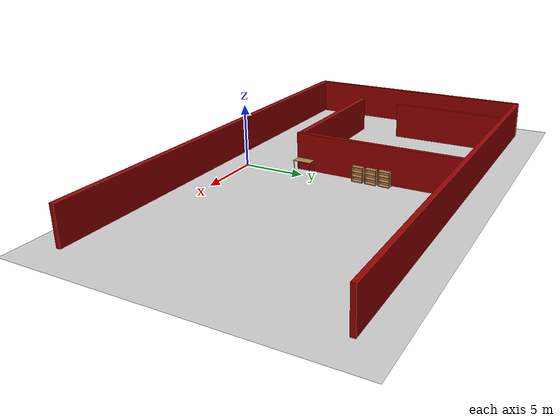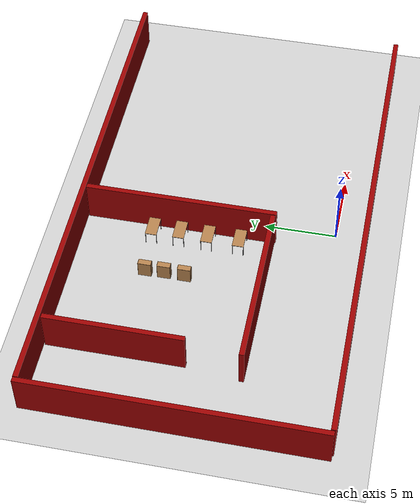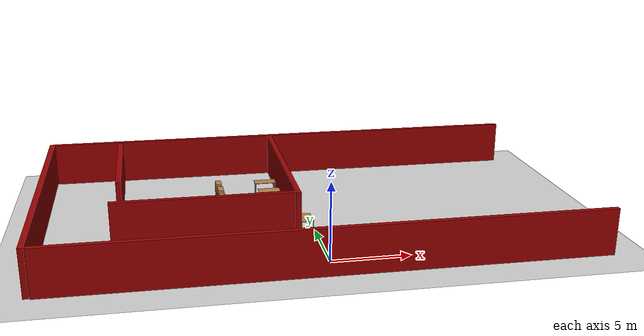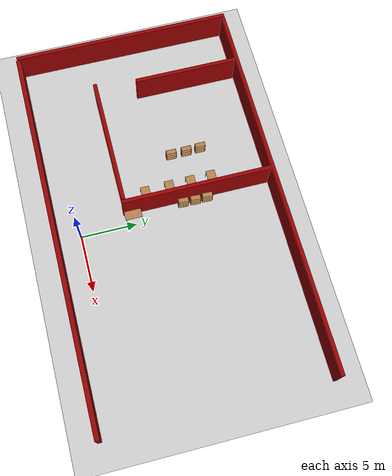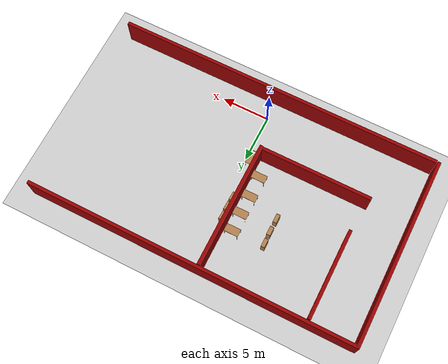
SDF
<sdf version="1.6">
 <world name="default">
  <model name="ground_plane">
   <static>1</static>
   <link name="link">
    <collision name="collision">
     <geometry><plane><normal>0 0 1</normal><size>100 100</size></plane></geometry>
     <surface>
      <contact><collide_bitmask>65535</collide_bitmask></contact>
      <friction><ode><mu>100</mu><mu2>50</mu2></ode></friction>
     </surface>
    </collision>
    <visual name="visual">
     <cast_shadows>0</cast_shadows>
     <geometry><plane><normal>0 0 1</normal><size>100 100</size></plane></geometry>
     <material>
      <script><uri>file://media/materials/scripts/gazebo.material</uri><name>Gazebo/Grey</name></script>
     </material>
    </visual>
   </link>
  </model>
  <model name="bookshelf">
   <static>1</static>
   <link name="link">
    <inertial><mass>1</mass></inertial>
    <collision name="back">
     <pose>0 0.005 0.6 0 -0 0</pose>
     <geometry><box><size>0.9 0.01 1.2</size></box></geometry>
    </collision>
    <visual name="visual1">
     <pose>0 0.005 0.6 0 -0 0</pose>
     <geometry><box><size>0.9 0.01 1.2</size></box></geometry>
     <material>
      <script><uri>file://media/materials/scripts/gazebo.material</uri><name>Gazebo/Wood</name></script>
     </material>
    </visual>
    <collision name="left_side">
     <pose>0.45 -0.195 0.6 0 -0 0</pose>
     <geometry><box><size>0.02 0.4 1.2</size></box></geometry>
    </collision>
    <visual name="visual2">
     <pose>0.45 -0.195 0.6 0 -0 0</pose>
     <geometry><box><size>0.02 0.4 1.2</size></box></geometry>
     <material>
      <script><uri>file://media/materials/scripts/gazebo.material</uri><name>Gazebo/Wood</name></script>
     </material>
    </visual>
    <collision name="right_side">
     <pose>-0.45 -0.195 0.6 0 -0 0</pose>
     <geometry><box><size>0.02 0.4 1.2</size></box></geometry>
    </collision>
    <visual name="visual3">
     <pose>-0.45 -0.195 0.6 0 -0 0</pose>
     <geometry><box><size>0.02 0.4 1.2</size></box></geometry>
     <material>
      <script><uri>file://media/materials/scripts/gazebo.material</uri><name>Gazebo/Wood</name></script>
     </material>
    </visual>
    <collision name="bottom">
     <pose>0 -0.195 0.03 0 -0 0</pose>
     <geometry><box><size>0.88 0.4 0.06</size></box></geometry>
    </collision>
    <visual name="visual4">
     <pose>0 -0.195 0.03 0 -0 0</pose>
     <geometry><box><size>0.88 0.4 0.06</size></box></geometry>
     <material>
      <script><uri>file://media/materials/scripts/gazebo.material</uri><name>Gazebo/Wood</name></script>
     </material>
    </visual>
    <collision name="top">
     <pose>0 -0.195 1.19 0 -0 0</pose>
     <geometry><box><size>0.88 0.4 0.02</size></box></geometry>
    </collision>
    <visual name="visual5">
     <pose>0 -0.195 1.19 0 -0 0</pose>
     <geometry><box><size>0.88 0.4 0.02</size></box></geometry>
     <material>
      <script><uri>file://media/materials/scripts/gazebo.material</uri><name>Gazebo/Wood</name></script>
     </material>
    </visual>
    <collision name="low_shelf">
     <pose>0 -0.195 0.43 0 -0 0</pose>
     <geometry><box><size>0.88 0.4 0.02</size></box></geometry>
    </collision>
    <visual name="visual6">
     <pose>0 -0.195 0.43 0 -0 0</pose>
     <geometry><box><size>0.88 0.4 0.02</size></box></geometry>
     <material>
      <script><uri>file://media/materials/scripts/gazebo.material</uri><name>Gazebo/Wood</name></script>
     </material>
    </visual>
    <collision name="high_shelf">
     <pose>0 -0.195 0.8 0 -0 0</pose>
     <geometry><box><size>0.88 0.4 0.02</size></box></geometry>
    </collision>
    <visual name="visual7">
     <pose>0 -0.195 0.8 0 -0 0</pose>
     <geometry><box><size>0.88 0.4 0.02</size></box></geometry>
     <material>
      <script><uri>file://media/materials/scripts/gazebo.material</uri><name>Gazebo/Wood</name></script>
     </material>
    </visual>
   </link>
   <pose>-0.972421 11.6801 0 0 -0 1.5196</pose>
  </model>
  <model name="table_2_clone">
   <static>1</static>
   <link name="link">
    <collision name="surface">
     <pose>0 0 1 0 -0 0</pose>
     <geometry><box><size>1.5 0.8 0.03</size></box></geometry>
     <surface><friction><ode><mu>0.6</mu><mu2>0.6</mu2></ode></friction></surface>
    </collision>
    <visual name="visual1">
     <pose>0 0 1 0 -0 0</pose>
     <geometry><box><size>1.5 0.8 0.03</size></box></geometry>
     <material>
      <script><uri>file://media/materials/scripts/gazebo.material</uri><name>Gazebo/Wood</name></script>
     </material>
    </visual>
    <collision name="front_left_leg">
     <pose>0.68 0.38 0.5 0 -0 0</pose>
     <geometry><cylinder><radius>0.02</radius><length>1</length></cylinder></geometry>
    </collision>
    <visual name="front_left_leg">
     <pose>0.68 0.38 0.5 0 -0 0</pose>
     <geometry><cylinder><radius>0.02</radius><length>1</length></cylinder></geometry>
     <material>
      <script><uri>file://media/materials/scripts/gazebo.material</uri><name>Gazebo/Grey</name></script>
     </material>
    </visual>
    <collision name="front_right_leg">
     <pose>0.68 -0.38 0.5 0 -0 0</pose>
     <geometry><cylinder><radius>0.02</radius><length>1</length></cylinder></geometry>
    </collision>
    <visual name="front_right_leg">
     <pose>0.68 -0.38 0.5 0 -0 0</pose>
     <geometry><cylinder><radius>0.02</radius><length>1</length></cylinder></geometry>
     <material>
      <script><uri>file://media/materials/scripts/gazebo.material</uri><name>Gazebo/Grey</name></script>
     </material>
    </visual>
    <collision name="back_right_leg">
     <pose>-0.68 -0.38 0.5 0 -0 0</pose>
     <geometry><cylinder><radius>0.02</radius><length>1</length></cylinder></geometry>
    </collision>
    <visual name="back_right_leg">
     <pose>-0.68 -0.38 0.5 0 -0 0</pose>
     <geometry><cylinder><radius>0.02</radius><length>1</length></cylinder></geometry>
     <material>
      <script><uri>file://media/materials/scripts/gazebo.material</uri><name>Gazebo/Grey</name></script>
     </material>
    </visual>
    <collision name="back_left_leg">
     <pose>-0.68 0.38 0.5 0 -0 0</pose>
     <geometry><cylinder><radius>0.02</radius><length>1</length></cylinder></geometry>
    </collision>
    <visual name="back_left_leg">
     <pose>-0.68 0.38 0.5 0 -0 0</pose>
     <geometry><cylinder><radius>0.02</radius><length>1</length></cylinder></geometry>
     <material>
      <script><uri>file://media/materials/scripts/gazebo.material</uri><name>Gazebo/Grey</name></script>
     </material>
    </visual>
   </link>
   <pose>-2.28989 12.5272 0 0 -0 0</pose>
  </model>
  <model name="table_2_clone_clone">
   <static>1</static>
   <link name="link">
    <collision name="surface">
     <pose>0 0 1 0 -0 0</pose>
     <geometry><box><size>1.5 0.8 0.03</size></box></geometry>
     <surface><friction><ode><mu>0.6</mu><mu2>0.6</mu2></ode></friction></surface>
    </collision>
    <visual name="visual1">
     <pose>0 0 1 0 -0 0</pose>
     <geometry><box><size>1.5 0.8 0.03</size></box></geometry>
     <material>
      <script><uri>file://media/materials/scripts/gazebo.material</uri><name>Gazebo/Wood</name></script>
     </material>
    </visual>
    <collision name="front_left_leg">
     <pose>0.68 0.38 0.5 0 -0 0</pose>
     <geometry><cylinder><radius>0.02</radius><length>1</length></cylinder></geometry>
    </collision>
    <visual name="front_left_leg">
     <pose>0.68 0.38 0.5 0 -0 0</pose>
     <geometry><cylinder><radius>0.02</radius><length>1</length></cylinder></geometry>
     <material>
      <script><uri>file://media/materials/scripts/gazebo.material</uri><name>Gazebo/Grey</name></script>
     </material>
    </visual>
    <collision name="front_right_leg">
     <pose>0.68 -0.38 0.5 0 -0 0</pose>
     <geometry><cylinder><radius>0.02</radius><length>1</length></cylinder></geometry>
    </collision>
    <visual name="front_right_leg">
     <pose>0.68 -0.38 0.5 0 -0 0</pose>
     <geometry><cylinder><radius>0.02</radius><length>1</length></cylinder></geometry>
     <material>
      <script><uri>file://media/materials/scripts/gazebo.material</uri><name>Gazebo/Grey</name></script>
     </material>
    </visual>
    <collision name="back_right_leg">
     <pose>-0.68 -0.38 0.5 0 -0 0</pose>
     <geometry><cylinder><radius>0.02</radius><length>1</length></cylinder></geometry>
    </collision>
    <visual name="back_right_leg">
     <pose>-0.68 -0.38 0.5 0 -0 0</pose>
     <geometry><cylinder><radius>0.02</radius><length>1</length></cylinder></geometry>
     <material>
      <script><uri>file://media/materials/scripts/gazebo.material</uri><name>Gazebo/Grey</name></script>
     </material>
    </visual>
    <collision name="back_left_leg">
     <pose>-0.68 0.38 0.5 0 -0 0</pose>
     <geometry><cylinder><radius>0.02</radius><length>1</length></cylinder></geometry>
    </collision>
    <visual name="back_left_leg">
     <pose>-0.68 0.38 0.5 0 -0 0</pose>
     <geometry><cylinder><radius>0.02</radius><length>1</length></cylinder></geometry>
     <material>
      <script><uri>file://media/materials/scripts/gazebo.material</uri><name>Gazebo/Grey</name></script>
     </material>
    </visual>
   </link>
   <pose>-2.23331 10.6133 0 0 -0 0</pose>
  </model>
  <model name="table_2_clone_clone_0">
   <static>1</static>
   <link name="link">
    <collision name="surface">
     <pose>0 0 1 0 -0 0</pose>
     <geometry><box><size>1.5 0.8 0.03</size></box></geometry>
     <surface><friction><ode><mu>0.6</mu><mu2>0.6</mu2></ode></friction></surface>
    </collision>
    <visual name="visual1">
     <pose>0 0 1 0 -0 0</pose>
     <geometry><box><size>1.5 0.8 0.03</size></box></geometry>
     <material>
      <script><uri>file://media/materials/scripts/gazebo.material</uri><name>Gazebo/Wood</name></script>
     </material>
    </visual>
    <collision name="front_left_leg">
     <pose>0.68 0.38 0.5 0 -0 0</pose>
     <geometry><cylinder><radius>0.02</radius><length>1</length></cylinder></geometry>
    </collision>
    <visual name="front_left_leg">
     <pose>0.68 0.38 0.5 0 -0 0</pose>
     <geometry><cylinder><radius>0.02</radius><length>1</length></cylinder></geometry>
     <material>
      <script><uri>file://media/materials/scripts/gazebo.material</uri><name>Gazebo/Grey</name></script>
     </material>
    </visual>
    <collision name="front_right_leg">
     <pose>0.68 -0.38 0.5 0 -0 0</pose>
     <geometry><cylinder><radius>0.02</radius><length>1</length></cylinder></geometry>
    </collision>
    <visual name="front_right_leg">
     <pose>0.68 -0.38 0.5 0 -0 0</pose>
     <geometry><cylinder><radius>0.02</radius><length>1</length></cylinder></geometry>
     <material>
      <script><uri>file://media/materials/scripts/gazebo.material</uri><name>Gazebo/Grey</name></script>
     </material>
    </visual>
    <collision name="back_right_leg">
     <pose>-0.68 -0.38 0.5 0 -0 0</pose>
     <geometry><cylinder><radius>0.02</radius><length>1</length></cylinder></geometry>
    </collision>
    <visual name="back_right_leg">
     <pose>-0.68 -0.38 0.5 0 -0 0</pose>
     <geometry><cylinder><radius>0.02</radius><length>1</length></cylinder></geometry>
     <material>
      <script><uri>file://media/materials/scripts/gazebo.material</uri><name>Gazebo/Grey</name></script>
     </material>
    </visual>
    <collision name="back_left_leg">
     <pose>-0.68 0.38 0.5 0 -0 0</pose>
     <geometry><cylinder><radius>0.02</radius><length>1</length></cylinder></geometry>
    </collision>
    <visual name="back_left_leg">
     <pose>-0.68 0.38 0.5 0 -0 0</pose>
     <geometry><cylinder><radius>0.02</radius><length>1</length></cylinder></geometry>
     <material>
      <script><uri>file://media/materials/scripts/gazebo.material</uri><name>Gazebo/Grey</name></script>
     </material>
    </visual>
   </link>
   <pose>-2.2404 8.64465 0 0 -0 0</pose>
  </model>
  <model name="table_2_clone_clone_1">
   <static>1</static>
   <link name="link">
    <collision name="surface">
     <pose>0 0 1 0 -0 0</pose>
     <geometry><box><size>1.5 0.8 0.03</size></box></geometry>
     <surface><friction><ode><mu>0.6</mu><mu2>0.6</mu2></ode></friction></surface>
    </collision>
    <visual name="visual1">
     <pose>0 0 1 0 -0 0</pose>
     <geometry><box><size>1.5 0.8 0.03</size></box></geometry>
     <material>
      <script><uri>file://media/materials/scripts/gazebo.material</uri><name>Gazebo/Wood</name></script>
     </material>
    </visual>
    <collision name="front_left_leg">
     <pose>0.68 0.38 0.5 0 -0 0</pose>
     <geometry><cylinder><radius>0.02</radius><length>1</length></cylinder></geometry>
    </collision>
    <visual name="front_left_leg">
     <pose>0.68 0.38 0.5 0 -0 0</pose>
     <geometry><cylinder><radius>0.02</radius><length>1</length></cylinder></geometry>
     <material>
      <script><uri>file://media/materials/scripts/gazebo.material</uri><name>Gazebo/Grey</name></script>
     </material>
    </visual>
    <collision name="front_right_leg">
     <pose>0.68 -0.38 0.5 0 -0 0</pose>
     <geometry><cylinder><radius>0.02</radius><length>1</length></cylinder></geometry>
    </collision>
    <visual name="front_right_leg">
     <pose>0.68 -0.38 0.5 0 -0 0</pose>
     <geometry><cylinder><radius>0.02</radius><length>1</length></cylinder></geometry>
     <material>
      <script><uri>file://media/materials/scripts/gazebo.material</uri><name>Gazebo/Grey</name></script>
     </material>
    </visual>
    <collision name="back_right_leg">
     <pose>-0.68 -0.38 0.5 0 -0 0</pose>
     <geometry><cylinder><radius>0.02</radius><length>1</length></cylinder></geometry>
    </collision>
    <visual name="back_right_leg">
     <pose>-0.68 -0.38 0.5 0 -0 0</pose>
     <geometry><cylinder><radius>0.02</radius><length>1</length></cylinder></geometry>
     <material>
      <script><uri>file://media/materials/scripts/gazebo.material</uri><name>Gazebo/Grey</name></script>
     </material>
    </visual>
    <collision name="back_left_leg">
     <pose>-0.68 0.38 0.5 0 -0 0</pose>
     <geometry><cylinder><radius>0.02</radius><length>1</length></cylinder></geometry>
    </collision>
    <visual name="back_left_leg">
     <pose>-0.68 0.38 0.5 0 -0 0</pose>
     <geometry><cylinder><radius>0.02</radius><length>1</length></cylinder></geometry>
     <material>
      <script><uri>file://media/materials/scripts/gazebo.material</uri><name>Gazebo/Grey</name></script>
     </material>
    </visual>
   </link>
   <pose>-2.19168 6.43538 0 0 -0 0</pose>
  </model>
  <model name="bookshelf_0_clone">
   <static>1</static>
   <link name="link">
    <inertial><mass>1</mass></inertial>
    <collision name="back">
     <pose>0 0.005 0.6 0 -0 0</pose>
     <geometry><box><size>0.9 0.01 1.2</size></box></geometry>
    </collision>
    <visual name="visual1">
     <pose>0 0.005 0.6 0 -0 0</pose>
     <geometry><box><size>0.9 0.01 1.2</size></box></geometry>
     <material>
      <script><uri>file://media/materials/scripts/gazebo.material</uri><name>Gazebo/Wood</name></script>
     </material>
    </visual>
    <collision name="left_side">
     <pose>0.45 -0.195 0.6 0 -0 0</pose>
     <geometry><box><size>0.02 0.4 1.2</size></box></geometry>
    </collision>
    <visual name="visual2">
     <pose>0.45 -0.195 0.6 0 -0 0</pose>
     <geometry><box><size>0.02 0.4 1.2</size></box></geometry>
     <material>
      <script><uri>file://media/materials/scripts/gazebo.material</uri><name>Gazebo/Wood</name></script>
     </material>
    </visual>
    <collision name="right_side">
     <pose>-0.45 -0.195 0.6 0 -0 0</pose>
     <geometry><box><size>0.02 0.4 1.2</size></box></geometry>
    </collision>
    <visual name="visual3">
     <pose>-0.45 -0.195 0.6 0 -0 0</pose>
     <geometry><box><size>0.02 0.4 1.2</size></box></geometry>
     <material>
      <script><uri>file://media/materials/scripts/gazebo.material</uri><name>Gazebo/Wood</name></script>
     </material>
    </visual>
    <collision name="bottom">
     <pose>0 -0.195 0.03 0 -0 0</pose>
     <geometry><box><size>0.88 0.4 0.06</size></box></geometry>
    </collision>
    <visual name="visual4">
     <pose>0 -0.195 0.03 0 -0 0</pose>
     <geometry><box><size>0.88 0.4 0.06</size></box></geometry>
     <material>
      <script><uri>file://media/materials/scripts/gazebo.material</uri><name>Gazebo/Wood</name></script>
     </material>
    </visual>
    <collision name="top">
     <pose>0 -0.195 1.19 0 -0 0</pose>
     <geometry><box><size>0.88 0.4 0.02</size></box></geometry>
    </collision>
    <visual name="visual5">
     <pose>0 -0.195 1.19 0 -0 0</pose>
     <geometry><box><size>0.88 0.4 0.02</size></box></geometry>
     <material>
      <script><uri>file://media/materials/scripts/gazebo.material</uri><name>Gazebo/Wood</name></script>
     </material>
    </visual>
    <collision name="low_shelf">
     <pose>0 -0.195 0.43 0 -0 0</pose>
     <geometry><box><size>0.88 0.4 0.02</size></box></geometry>
    </collision>
    <visual name="visual6">
     <pose>0 -0.195 0.43 0 -0 0</pose>
     <geometry><box><size>0.88 0.4 0.02</size></box></geometry>
     <material>
      <script><uri>file://media/materials/scripts/gazebo.material</uri><name>Gazebo/Wood</name></script>
     </material>
    </visual>
    <collision name="high_shelf">
     <pose>0 -0.195 0.8 0 -0 0</pose>
     <geometry><box><size>0.88 0.4 0.02</size></box></geometry>
    </collision>
    <visual name="visual7">
     <pose>0 -0.195 0.8 0 -0 0</pose>
     <geometry><box><size>0.88 0.4 0.02</size></box></geometry>
     <material>
      <script><uri>file://media/materials/scripts/gazebo.material</uri><name>Gazebo/Wood</name></script>
     </material>
    </visual>
   </link>
   <pose>-5.84762 12.3136 0 0 -0 1.57</pose>
  </model>
  <model name="bookshelf_0_clone_clone">
   <static>1</static>
   <link name="link">
    <inertial><mass>1</mass></inertial>
    <collision name="back">
     <pose>0 0.005 0.6 0 -0 0</pose>
     <geometry><box><size>0.9 0.01 1.2</size></box></geometry>
    </collision>
    <visual name="visual1">
     <pose>0 0.005 0.6 0 -0 0</pose>
     <geometry><box><size>0.9 0.01 1.2</size></box></geometry>
     <material>
      <script><uri>file://media/materials/scripts/gazebo.material</uri><name>Gazebo/Wood</name></script>
     </material>
    </visual>
    <collision name="left_side">
     <pose>0.45 -0.195 0.6 0 -0 0</pose>
     <geometry><box><size>0.02 0.4 1.2</size></box></geometry>
    </collision>
    <visual name="visual2">
     <pose>0.45 -0.195 0.6 0 -0 0</pose>
     <geometry><box><size>0.02 0.4 1.2</size></box></geometry>
     <material>
      <script><uri>file://media/materials/scripts/gazebo.material</uri><name>Gazebo/Wood</name></script>
     </material>
    </visual>
    <collision name="right_side">
     <pose>-0.45 -0.195 0.6 0 -0 0</pose>
     <geometry><box><size>0.02 0.4 1.2</size></box></geometry>
    </collision>
    <visual name="visual3">
     <pose>-0.45 -0.195 0.6 0 -0 0</pose>
     <geometry><box><size>0.02 0.4 1.2</size></box></geometry>
     <material>
      <script><uri>file://media/materials/scripts/gazebo.material</uri><name>Gazebo/Wood</name></script>
     </material>
    </visual>
    <collision name="bottom">
     <pose>0 -0.195 0.03 0 -0 0</pose>
     <geometry><box><size>0.88 0.4 0.06</size></box></geometry>
    </collision>
    <visual name="visual4">
     <pose>0 -0.195 0.03 0 -0 0</pose>
     <geometry><box><size>0.88 0.4 0.06</size></box></geometry>
     <material>
      <script><uri>file://media/materials/scripts/gazebo.material</uri><name>Gazebo/Wood</name></script>
     </material>
    </visual>
    <collision name="top">
     <pose>0 -0.195 1.19 0 -0 0</pose>
     <geometry><box><size>0.88 0.4 0.02</size></box></geometry>
    </collision>
    <visual name="visual5">
     <pose>0 -0.195 1.19 0 -0 0</pose>
     <geometry><box><size>0.88 0.4 0.02</size></box></geometry>
     <material>
      <script><uri>file://media/materials/scripts/gazebo.material</uri><name>Gazebo/Wood</name></script>
     </material>
    </visual>
    <collision name="low_shelf">
     <pose>0 -0.195 0.43 0 -0 0</pose>
     <geometry><box><size>0.88 0.4 0.02</size></box></geometry>
    </collision>
    <visual name="visual6">
     <pose>0 -0.195 0.43 0 -0 0</pose>
     <geometry><box><size>0.88 0.4 0.02</size></box></geometry>
     <material>
      <script><uri>file://media/materials/scripts/gazebo.material</uri><name>Gazebo/Wood</name></script>
     </material>
    </visual>
    <collision name="high_shelf">
     <pose>0 -0.195 0.8 0 -0 0</pose>
     <geometry><box><size>0.88 0.4 0.02</size></box></geometry>
    </collision>
    <visual name="visual7">
     <pose>0 -0.195 0.8 0 -0 0</pose>
     <geometry><box><size>0.88 0.4 0.02</size></box></geometry>
     <material>
      <script><uri>file://media/materials/scripts/gazebo.material</uri><name>Gazebo/Wood</name></script>
     </material>
    </visual>
   </link>
   <pose>-5.8051 10.9998 0 0 -0 1.57</pose>
  </model>
  <model name="bookshelf_0_clone_clone_clone">
   <static>1</static>
   <link name="link">
    <inertial><mass>1</mass></inertial>
    <collision name="back">
     <pose>0 0.005 0.6 0 -0 0</pose>
     <geometry><box><size>0.9 0.01 1.2</size></box></geometry>
    </collision>
    <visual name="visual1">
     <pose>0 0.005 0.6 0 -0 0</pose>
     <geometry><box><size>0.9 0.01 1.2</size></box></geometry>
     <material>
      <script><uri>file://media/materials/scripts/gazebo.material</uri><name>Gazebo/Wood</name></script>
     </material>
    </visual>
    <collision name="left_side">
     <pose>0.45 -0.195 0.6 0 -0 0</pose>
     <geometry><box><size>0.02 0.4 1.2</size></box></geometry>
    </collision>
    <visual name="visual2">
     <pose>0.45 -0.195 0.6 0 -0 0</pose>
     <geometry><box><size>0.02 0.4 1.2</size></box></geometry>
     <material>
      <script><uri>file://media/materials/scripts/gazebo.material</uri><name>Gazebo/Wood</name></script>
     </material>
    </visual>
    <collision name="right_side">
     <pose>-0.45 -0.195 0.6 0 -0 0</pose>
     <geometry><box><size>0.02 0.4 1.2</size></box></geometry>
    </collision>
    <visual name="visual3">
     <pose>-0.45 -0.195 0.6 0 -0 0</pose>
     <geometry><box><size>0.02 0.4 1.2</size></box></geometry>
     <material>
      <script><uri>file://media/materials/scripts/gazebo.material</uri><name>Gazebo/Wood</name></script>
     </material>
    </visual>
    <collision name="bottom">
     <pose>0 -0.195 0.03 0 -0 0</pose>
     <geometry><box><size>0.88 0.4 0.06</size></box></geometry>
    </collision>
    <visual name="visual4">
     <pose>0 -0.195 0.03 0 -0 0</pose>
     <geometry><box><size>0.88 0.4 0.06</size></box></geometry>
     <material>
      <script><uri>file://media/materials/scripts/gazebo.material</uri><name>Gazebo/Wood</name></script>
     </material>
    </visual>
    <collision name="top">
     <pose>0 -0.195 1.19 0 -0 0</pose>
     <geometry><box><size>0.88 0.4 0.02</size></box></geometry>
    </collision>
    <visual name="visual5">
     <pose>0 -0.195 1.19 0 -0 0</pose>
     <geometry><box><size>0.88 0.4 0.02</size></box></geometry>
     <material>
      <script><uri>file://media/materials/scripts/gazebo.material</uri><name>Gazebo/Wood</name></script>
     </material>
    </visual>
    <collision name="low_shelf">
     <pose>0 -0.195 0.43 0 -0 0</pose>
     <geometry><box><size>0.88 0.4 0.02</size></box></geometry>
    </collision>
    <visual name="visual6">
     <pose>0 -0.195 0.43 0 -0 0</pose>
     <geometry><box><size>0.88 0.4 0.02</size></box></geometry>
     <material>
      <script><uri>file://media/materials/scripts/gazebo.material</uri><name>Gazebo/Wood</name></script>
     </material>
    </visual>
    <collision name="high_shelf">
     <pose>0 -0.195 0.8 0 -0 0</pose>
     <geometry><box><size>0.88 0.4 0.02</size></box></geometry>
    </collision>
    <visual name="visual7">
     <pose>0 -0.195 0.8 0 -0 0</pose>
     <geometry><box><size>0.88 0.4 0.02</size></box></geometry>
     <material>
      <script><uri>file://media/materials/scripts/gazebo.material</uri><name>Gazebo/Wood</name></script>
     </material>
    </visual>
   </link>
   <pose>-5.80767 9.5889 0 0 -0 1.57</pose>
  </model>
  <model name="bookshelf_clone">
   <static>1</static>
   <link name="link">
    <inertial><mass>1</mass></inertial>
    <collision name="back">
     <pose>0 0.005 0.6 0 -0 0</pose>
     <geometry><box><size>0.9 0.01 1.2</size></box></geometry>
    </collision>
    <visual name="visual1">
     <pose>0 0.005 0.6 0 -0 0</pose>
     <geometry><box><size>0.9 0.01 1.2</size></box></geometry>
     <material>
      <script><uri>file://media/materials/scripts/gazebo.material</uri><name>Gazebo/Wood</name></script>
     </material>
    </visual>
    <collision name="left_side">
     <pose>0.45 -0.195 0.6 0 -0 0</pose>
     <geometry><box><size>0.02 0.4 1.2</size></box></geometry>
    </collision>
    <visual name="visual2">
     <pose>0.45 -0.195 0.6 0 -0 0</pose>
     <geometry><box><size>0.02 0.4 1.2</size></box></geometry>
     <material>
      <script><uri>file://media/materials/scripts/gazebo.material</uri><name>Gazebo/Wood</name></script>
     </material>
    </visual>
    <collision name="right_side">
     <pose>-0.45 -0.195 0.6 0 -0 0</pose>
     <geometry><box><size>0.02 0.4 1.2</size></box></geometry>
    </collision>
    <visual name="visual3">
     <pose>-0.45 -0.195 0.6 0 -0 0</pose>
     <geometry><box><size>0.02 0.4 1.2</size></box></geometry>
     <material>
      <script><uri>file://media/materials/scripts/gazebo.material</uri><name>Gazebo/Wood</name></script>
     </material>
    </visual>
    <collision name="bottom">
     <pose>0 -0.195 0.03 0 -0 0</pose>
     <geometry><box><size>0.88 0.4 0.06</size></box></geometry>
    </collision>
    <visual name="visual4">
     <pose>0 -0.195 0.03 0 -0 0</pose>
     <geometry><box><size>0.88 0.4 0.06</size></box></geometry>
     <material>
      <script><uri>file://media/materials/scripts/gazebo.material</uri><name>Gazebo/Wood</name></script>
     </material>
    </visual>
    <collision name="top">
     <pose>0 -0.195 1.19 0 -0 0</pose>
     <geometry><box><size>0.88 0.4 0.02</size></box></geometry>
    </collision>
    <visual name="visual5">
     <pose>0 -0.195 1.19 0 -0 0</pose>
     <geometry><box><size>0.88 0.4 0.02</size></box></geometry>
     <material>
      <script><uri>file://media/materials/scripts/gazebo.material</uri><name>Gazebo/Wood</name></script>
     </material>
    </visual>
    <collision name="low_shelf">
     <pose>0 -0.195 0.43 0 -0 0</pose>
     <geometry><box><size>0.88 0.4 0.02</size></box></geometry>
    </collision>
    <visual name="visual6">
     <pose>0 -0.195 0.43 0 -0 0</pose>
     <geometry><box><size>0.88 0.4 0.02</size></box></geometry>
     <material>
      <script><uri>file://media/materials/scripts/gazebo.material</uri><name>Gazebo/Wood</name></script>
     </material>
    </visual>
    <collision name="high_shelf">
     <pose>0 -0.195 0.8 0 -0 0</pose>
     <geometry><box><size>0.88 0.4 0.02</size></box></geometry>
    </collision>
    <visual name="visual7">
     <pose>0 -0.195 0.8 0 -0 0</pose>
     <geometry><box><size>0.88 0.4 0.02</size></box></geometry>
     <material>
      <script><uri>file://media/materials/scripts/gazebo.material</uri><name>Gazebo/Wood</name></script>
     </material>
    </visual>
   </link>
   <pose>-0.953743 10.5961 0 0 -0 1.5196</pose>
  </model>
  <model name="bookshelf_clone_0">
   <static>1</static>
   <link name="link">
    <inertial><mass>1</mass></inertial>
    <collision name="back">
     <pose>0 0.005 0.6 0 -0 0</pose>
     <geometry><box><size>0.9 0.01 1.2</size></box></geometry>
    </collision>
    <visual name="visual1">
     <pose>0 0.005 0.6 0 -0 0</pose>
     <geometry><box><size>0.9 0.01 1.2</size></box></geometry>
     <material>
      <script><uri>file://media/materials/scripts/gazebo.material</uri><name>Gazebo/Wood</name></script>
     </material>
    </visual>
    <collision name="left_side">
     <pose>0.45 -0.195 0.6 0 -0 0</pose>
     <geometry><box><size>0.02 0.4 1.2</size></box></geometry>
    </collision>
    <visual name="visual2">
     <pose>0.45 -0.195 0.6 0 -0 0</pose>
     <geometry><box><size>0.02 0.4 1.2</size></box></geometry>
     <material>
      <script><uri>file://media/materials/scripts/gazebo.material</uri><name>Gazebo/Wood</name></script>
     </material>
    </visual>
    <collision name="right_side">
     <pose>-0.45 -0.195 0.6 0 -0 0</pose>
     <geometry><box><size>0.02 0.4 1.2</size></box></geometry>
    </collision>
    <visual name="visual3">
     <pose>-0.45 -0.195 0.6 0 -0 0</pose>
     <geometry><box><size>0.02 0.4 1.2</size></box></geometry>
     <material>
      <script><uri>file://media/materials/scripts/gazebo.material</uri><name>Gazebo/Wood</name></script>
     </material>
    </visual>
    <collision name="bottom">
     <pose>0 -0.195 0.03 0 -0 0</pose>
     <geometry><box><size>0.88 0.4 0.06</size></box></geometry>
    </collision>
    <visual name="visual4">
     <pose>0 -0.195 0.03 0 -0 0</pose>
     <geometry><box><size>0.88 0.4 0.06</size></box></geometry>
     <material>
      <script><uri>file://media/materials/scripts/gazebo.material</uri><name>Gazebo/Wood</name></script>
     </material>
    </visual>
    <collision name="top">
     <pose>0 -0.195 1.19 0 -0 0</pose>
     <geometry><box><size>0.88 0.4 0.02</size></box></geometry>
    </collision>
    <visual name="visual5">
     <pose>0 -0.195 1.19 0 -0 0</pose>
     <geometry><box><size>0.88 0.4 0.02</size></box></geometry>
     <material>
      <script><uri>file://media/materials/scripts/gazebo.material</uri><name>Gazebo/Wood</name></script>
     </material>
    </visual>
    <collision name="low_shelf">
     <pose>0 -0.195 0.43 0 -0 0</pose>
     <geometry><box><size>0.88 0.4 0.02</size></box></geometry>
    </collision>
    <visual name="visual6">
     <pose>0 -0.195 0.43 0 -0 0</pose>
     <geometry><box><size>0.88 0.4 0.02</size></box></geometry>
     <material>
      <script><uri>file://media/materials/scripts/gazebo.material</uri><name>Gazebo/Wood</name></script>
     </material>
    </visual>
    <collision name="high_shelf">
     <pose>0 -0.195 0.8 0 -0 0</pose>
     <geometry><box><size>0.88 0.4 0.02</size></box></geometry>
    </collision>
    <visual name="visual7">
     <pose>0 -0.195 0.8 0 -0 0</pose>
     <geometry><box><size>0.88 0.4 0.02</size></box></geometry>
     <material>
      <script><uri>file://media/materials/scripts/gazebo.material</uri><name>Gazebo/Wood</name></script>
     </material>
    </visual>
   </link>
   <pose>-0.977856 9.48927 0 0 -0 1.5196</pose>
  </model>
  <model name="table_2_clone_0_clone_0">
   <static>1</static>
   <link name="link">
    <collision name="surface">
     <pose>0 0 1 0 -0 0</pose>
     <geometry><box><size>1.5 0.8 0.03</size></box></geometry>
     <surface><friction><ode><mu>0.6</mu><mu2>0.6</mu2></ode></friction></surface>
    </collision>
    <visual name="visual1">
     <pose>0 0 1 0 -0 0</pose>
     <geometry><box><size>1.5 0.8 0.03</size></box></geometry>
     <material>
      <script><uri>file://media/materials/scripts/gazebo.material</uri><name>Gazebo/Wood</name></script>
     </material>
    </visual>
    <collision name="front_left_leg">
     <pose>0.68 0.38 0.5 0 -0 0</pose>
     <geometry><cylinder><radius>0.02</radius><length>1</length></cylinder></geometry>
    </collision>
    <visual name="front_left_leg">
     <pose>0.68 0.38 0.5 0 -0 0</pose>
     <geometry><cylinder><radius>0.02</radius><length>1</length></cylinder></geometry>
     <material>
      <script><uri>file://media/materials/scripts/gazebo.material</uri><name>Gazebo/Grey</name></script>
     </material>
    </visual>
    <collision name="front_right_leg">
     <pose>0.68 -0.38 0.5 0 -0 0</pose>
     <geometry><cylinder><radius>0.02</radius><length>1</length></cylinder></geometry>
    </collision>
    <visual name="front_right_leg">
     <pose>0.68 -0.38 0.5 0 -0 0</pose>
     <geometry><cylinder><radius>0.02</radius><length>1</length></cylinder></geometry>
     <material>
      <script><uri>file://media/materials/scripts/gazebo.material</uri><name>Gazebo/Grey</name></script>
     </material>
    </visual>
    <collision name="back_right_leg">
     <pose>-0.68 -0.38 0.5 0 -0 0</pose>
     <geometry><cylinder><radius>0.02</radius><length>1</length></cylinder></geometry>
    </collision>
    <visual name="back_right_leg">
     <pose>-0.68 -0.38 0.5 0 -0 0</pose>
     <geometry><cylinder><radius>0.02</radius><length>1</length></cylinder></geometry>
     <material>
      <script><uri>file://media/materials/scripts/gazebo.material</uri><name>Gazebo/Grey</name></script>
     </material>
    </visual>
    <collision name="back_left_leg">
     <pose>-0.68 0.38 0.5 0 -0 0</pose>
     <geometry><cylinder><radius>0.02</radius><length>1</length></cylinder></geometry>
    </collision>
    <visual name="back_left_leg">
     <pose>-0.68 0.38 0.5 0 -0 0</pose>
     <geometry><cylinder><radius>0.02</radius><length>1</length></cylinder></geometry>
     <material>
      <script><uri>file://media/materials/scripts/gazebo.material</uri><name>Gazebo/Grey</name></script>
     </material>
    </visual>
   </link>
   <pose>-0.631077 4.88632 0 0 -0 1.56952</pose>
  </model>
  <model name="Final_Wall_2_clone">
   <link name="link">
    <inertial>
     <mass>13.5935</mass>
     <inertia><ixx>10.3875</ixx><ixy>0</ixy><ixz>0</ixz><iyy>211.356</iyy><iyz>0</iyz><izz>201.229</izz></inertia>
    </inertial>
    <pose>2.63473 0 1.04244 0 -0 0</pose>
    <gravity>0</gravity>
    <visual name="visual">
     <geometry><box><size>13.3238 0.339044 3.00914</size></box></geometry>
     <material>
      <script><name>Gazebo/Grey</name><uri>file://media/materials/scripts/gazebo.material</uri></script>
      <ambient>0.6 0 0 0</ambient>
      <shader type="vertex"><normal_map>__default__</normal_map></shader>
      <diffuse>0.7 0.7 0.7 1</diffuse>
      <specular>0.01 0.01 0.01 1</specular>
      <emissive>0 0 0 1</emissive>
     </material>
    </visual>
    <collision name="collision">
     <geometry><box><size>13.3238 0.339044 3.00914</size></box></geometry>
     <surface>
      <friction>
       <ode><mu>1</mu><mu2>1</mu2><fdir1>0 0 0</fdir1><slip1>0</slip1><slip2>0</slip2></ode>
       <torsional>
        <coefficient>1</coefficient>
        <patch_radius>0</patch_radius>
        <surface_radius>0</surface_radius>
        <use_patch_radius>1</use_patch_radius>
        <ode><slip>0</slip></ode>
       </torsional>
      </friction>
      <bounce><restitution_coefficient>0</restitution_coefficient><threshold>1e+06</threshold></bounce>
      <contact>
       <collide_without_contact>0</collide_without_contact>
       <collide_without_contact_bitmask>1</collide_without_contact_bitmask>
       <collide_bitmask>1</collide_bitmask>
       <ode>
        <soft_cfm>0</soft_cfm>
        <soft_erp>0.2</soft_erp>
        <kp>1e+13</kp>
        <kd>1</kd>
        <max_vel>0.01</max_vel>
        <min_depth>0</min_depth>
       </ode>
       <bullet>
        <split_impulse>1</split_impulse>
        <split_impulse_penetration_threshold>-0.01</split_impulse_penetration_threshold>
        <soft_cfm>0</soft_cfm>
        <soft_erp>0.2</soft_erp>
        <kp>1e+13</kp>
        <kd>1</kd>
       </bullet>
      </contact>
     </surface>
    </collision>
   </link>
   <static>0</static>
   <pose>-1.23089 8.09207 0.5 0 -0 1.57</pose>
  </model>
  <model name="Final_Wall_2">
   <link name="link">
    <inertial>
     <mass>11.8319</mass>
     <inertia><ixx>9.04142</ixx><ixy>0</ixy><ixz>0</ixz><iyy>141.538</iyy><iyz>0</iyz><izz>132.723</izz></inertia>
    </inertial>
    <pose>3.50551 0 1.04244 0 -0 0</pose>
    <gravity>0</gravity>
    <visual name="visual">
     <geometry><box><size>11.5971 0.339044 3.00914</size></box></geometry>
     <material>
      <script><name>Gazebo/Grey</name><uri>file://media/materials/scripts/gazebo.material</uri></script>
      <ambient>0.6 0 0 0</ambient>
      <shader type="vertex"><normal_map>__default__</normal_map></shader>
      <diffuse>0.7 0.7 0.7 1</diffuse>
      <specular>0.01 0.01 0.01 1</specular>
      <emissive>0 0 0 1</emissive>
     </material>
    </visual>
    <collision name="collision">
     <geometry><box><size>11.5971 0.339044 3.00914</size></box></geometry>
     <surface>
      <friction>
       <ode><mu>1</mu><mu2>1</mu2><fdir1>0 0 0</fdir1><slip1>0</slip1><slip2>0</slip2></ode>
       <torsional>
        <coefficient>1</coefficient>
        <patch_radius>0</patch_radius>
        <surface_radius>0</surface_radius>
        <use_patch_radius>1</use_patch_radius>
        <ode><slip>0</slip></ode>
       </torsional>
      </friction>
      <bounce><restitution_coefficient>0</restitution_coefficient><threshold>1e+06</threshold></bounce>
      <contact>
       <collide_without_contact>0</collide_without_contact>
       <collide_without_contact_bitmask>1</collide_without_contact_bitmask>
       <collide_bitmask>1</collide_bitmask>
       <ode>
        <soft_cfm>0</soft_cfm>
        <soft_erp>0.2</soft_erp>
        <kp>1e+13</kp>
        <kd>1</kd>
        <max_vel>0.01</max_vel>
        <min_depth>0</min_depth>
       </ode>
       <bullet>
        <split_impulse>1</split_impulse>
        <split_impulse_penetration_threshold>-0.01</split_impulse_penetration_threshold>
        <soft_cfm>0</soft_cfm>
        <soft_erp>0.2</soft_erp>
        <kp>1e+13</kp>
        <kd>1</kd>
       </bullet>
      </contact>
     </surface>
    </collision>
   </link>
   <static>0</static>
   <pose>-10.746 4.2912 0.5 0 -0 0</pose>
  </model>
  <model name="Final_Wall_4">
   <link name="link">
    <inertial>
     <mass>9.53571</mass>
     <inertia><ixx>7.28677</ixx><ixy>0</ixy><ixz>0</ixz><iyy>76.6134</iyy><iyz>0</iyz><izz>69.5093</izz></inertia>
    </inertial>
    <pose>2.63473 0 1.04244 0 -0 0</pose>
    <gravity>0</gravity>
    <visual name="visual">
     <geometry><box><size>9.34652 0.339044 3.00914</size></box></geometry>
     <material>
      <script><name>Gazebo/Grey</name><uri>file://media/materials/scripts/gazebo.material</uri></script>
      <ambient>0.6 0 0 0</ambient>
      <shader type="vertex"><normal_map>__default__</normal_map></shader>
      <diffuse>0.7 0.7 0.7 1</diffuse>
      <specular>0.01 0.01 0.01 1</specular>
      <emissive>0 0 0 1</emissive>
     </material>
    </visual>
    <collision name="collision">
     <geometry><box><size>9.34652 0.339044 3.00914</size></box></geometry>
     <surface>
      <friction>
       <ode><mu>1</mu><mu2>1</mu2><fdir1>0 0 0</fdir1><slip1>0</slip1><slip2>0</slip2></ode>
       <torsional>
        <coefficient>1</coefficient>
        <patch_radius>0</patch_radius>
        <surface_radius>0</surface_radius>
        <use_patch_radius>1</use_patch_radius>
        <ode><slip>0</slip></ode>
       </torsional>
      </friction>
      <bounce><restitution_coefficient>0</restitution_coefficient><threshold>1e+06</threshold></bounce>
      <contact>
       <collide_without_contact>0</collide_without_contact>
       <collide_without_contact_bitmask>1</collide_without_contact_bitmask>
       <collide_bitmask>1</collide_bitmask>
       <ode>
        <soft_cfm>0</soft_cfm>
        <soft_erp>0.2</soft_erp>
        <kp>1e+13</kp>
        <kd>1</kd>
        <max_vel>0.01</max_vel>
        <min_depth>0</min_depth>
       </ode>
       <bullet>
        <split_impulse>1</split_impulse>
        <split_impulse_penetration_threshold>-0.01</split_impulse_penetration_threshold>
        <soft_cfm>0</soft_cfm>
        <soft_erp>0.2</soft_erp>
        <kp>1e+13</kp>
        <kd>1</kd>
       </bullet>
      </contact>
     </surface>
    </collision>
   </link>
   <static>0</static>
   <pose>-12.5039 10.0451 0.5 0 -0 1.57</pose>
  </model>
  <model name="Final_Wall_1_clone">
   <link name="link">
    <inertial>
     <mass>35.1957</mass>
     <inertia><ixx>26.895</ixx><ixy>0</ixy><ixz>0</ixz><iyy>3517</iyy><iyz>0</iyz><izz>3490.78</izz></inertia>
    </inertial>
    <pose>6.16368 -1.86827 1.04244 0 -0 0</pose>
    <gravity>0</gravity>
    <visual name="visual">
     <geometry><box><size>34.4974 0.339044 3.00914</size></box></geometry>
     <material>
      <script><name>Gazebo/Grey</name><uri>file://media/materials/scripts/gazebo.material</uri></script>
      <ambient>0.6 0 0 0</ambient>
      <shader type="vertex"><normal_map>__default__</normal_map></shader>
      <diffuse>0.7 0.7 0.7 1</diffuse>
      <specular>0.01 0.01 0.01 1</specular>
      <emissive>0 0 0 1</emissive>
     </material>
    </visual>
    <collision name="collision">
     <geometry><box><size>34.4974 0.339044 3.00914</size></box></geometry>
     <surface>
      <friction>
       <ode><mu>1</mu><mu2>1</mu2><fdir1>0 0 0</fdir1><slip1>0</slip1><slip2>0</slip2></ode>
       <torsional>
        <coefficient>1</coefficient>
        <patch_radius>0</patch_radius>
        <surface_radius>0</surface_radius>
        <use_patch_radius>1</use_patch_radius>
        <ode><slip>0</slip></ode>
       </torsional>
      </friction>
      <bounce><restitution_coefficient>0</restitution_coefficient><threshold>1e+06</threshold></bounce>
      <contact>
       <collide_without_contact>0</collide_without_contact>
       <collide_without_contact_bitmask>1</collide_without_contact_bitmask>
       <collide_bitmask>1</collide_bitmask>
       <ode>
        <soft_cfm>0</soft_cfm>
        <soft_erp>0.2</soft_erp>
        <kp>1e+13</kp>
        <kd>1</kd>
        <max_vel>0.01</max_vel>
        <min_depth>0</min_depth>
       </ode>
       <bullet>
        <split_impulse>1</split_impulse>
        <split_impulse_penetration_threshold>-0.01</split_impulse_penetration_threshold>
        <soft_cfm>0</soft_cfm>
        <soft_erp>0.2</soft_erp>
        <kp>1e+13</kp>
        <kd>1</kd>
       </bullet>
      </contact>
     </surface>
    </collision>
   </link>
   <static>0</static>
   <pose>-6.16371 19.4768 0.5 0 -0 0</pose>
  </model>
  <model name="Final_Wall_1_clone_clone">
   <link name="link">
    <inertial>
     <mass>35.1957</mass>
     <inertia><ixx>26.895</ixx><ixy>0</ixy><ixz>0</ixz><iyy>3517</iyy><iyz>0</iyz><izz>3490.78</izz></inertia>
    </inertial>
    <pose>6.16368 -1.86827 1.04244 0 -0 0</pose>
    <gravity>0</gravity>
    <visual name="visual">
     <geometry><box><size>34.4974 0.339044 3.00914</size></box></geometry>
     <material>
      <script><name>Gazebo/Grey</name><uri>file://media/materials/scripts/gazebo.material</uri></script>
      <ambient>0.6 0 0 0</ambient>
      <shader type="vertex"><normal_map>__default__</normal_map></shader>
      <diffuse>0.7 0.7 0.7 1</diffuse>
      <specular>0.01 0.01 0.01 1</specular>
      <emissive>0 0 0 1</emissive>
     </material>
    </visual>
    <collision name="collision">
     <geometry><box><size>34.4974 0.339044 3.00914</size></box></geometry>
     <surface>
      <friction>
       <ode><mu>1</mu><mu2>1</mu2><fdir1>0 0 0</fdir1><slip1>0</slip1><slip2>0</slip2></ode>
       <torsional>
        <coefficient>1</coefficient>
        <patch_radius>0</patch_radius>
        <surface_radius>0</surface_radius>
        <use_patch_radius>1</use_patch_radius>
        <ode><slip>0</slip></ode>
       </torsional>
      </friction>
      <bounce><restitution_coefficient>0</restitution_coefficient><threshold>1e+06</threshold></bounce>
      <contact>
       <collide_without_contact>0</collide_without_contact>
       <collide_without_contact_bitmask>1</collide_without_contact_bitmask>
       <collide_bitmask>1</collide_bitmask>
       <ode>
        <soft_cfm>0</soft_cfm>
        <soft_erp>0.2</soft_erp>
        <kp>1e+13</kp>
        <kd>1</kd>
        <max_vel>0.01</max_vel>
        <min_depth>0</min_depth>
       </ode>
       <bullet>
        <split_impulse>1</split_impulse>
        <split_impulse_penetration_threshold>-0.01</split_impulse_penetration_threshold>
        <soft_cfm>0</soft_cfm>
        <soft_erp>0.2</soft_erp>
        <kp>1e+13</kp>
        <kd>1</kd>
       </bullet>
      </contact>
     </surface>
    </collision>
   </link>
   <static>0</static>
   <pose>-6.15412 -0.199459 0.5 0 -0 0</pose>
  </model>
  <model name="Final_Wall_1_clone_clone_0_clone">
   <link name="link">
    <inertial>
     <mass>20.3054</mass>
     <inertia><ixx>15.5165</ixx><ixy>0</ixy><ixz>0</ixz><iyy>685.587</iyy><iyz>0</iyz><izz>670.459</izz></inertia>
    </inertial>
    <pose>4.24868 -1.86827 1.04244 0 -0 0</pose>
    <gravity>0</gravity>
    <visual name="visual">
     <geometry><box><size>19.9025 0.339044 3.00914</size></box></geometry>
     <material>
      <script><name>Gazebo/Grey</name><uri>file://media/materials/scripts/gazebo.material</uri></script>
      <ambient>0.6 0 0 0</ambient>
      <shader type="vertex"><normal_map>__default__</normal_map></shader>
      <diffuse>0.7 0.7 0.7 1</diffuse>
      <specular>0.01 0.01 0.01 1</specular>
      <emissive>0 0 0 1</emissive>
     </material>
    </visual>
    <collision name="collision">
     <geometry><box><size>19.9025 0.339044 3.00914</size></box></geometry>
     <surface>
      <friction>
       <ode><mu>1</mu><mu2>1</mu2><fdir1>0 0 0</fdir1><slip1>0</slip1><slip2>0</slip2></ode>
       <torsional>
        <coefficient>1</coefficient>
        <patch_radius>0</patch_radius>
        <surface_radius>0</surface_radius>
        <use_patch_radius>1</use_patch_radius>
        <ode><slip>0</slip></ode>
       </torsional>
      </friction>
      <bounce><restitution_coefficient>0</restitution_coefficient><threshold>1e+06</threshold></bounce>
      <contact>
       <collide_without_contact>0</collide_without_contact>
       <collide_without_contact_bitmask>1</collide_without_contact_bitmask>
       <collide_bitmask>1</collide_bitmask>
       <ode>
        <soft_cfm>0</soft_cfm>
        <soft_erp>0.2</soft_erp>
        <kp>1e+13</kp>
        <kd>1</kd>
        <max_vel>0.01</max_vel>
        <min_depth>0</min_depth>
       </ode>
       <bullet>
        <split_impulse>1</split_impulse>
        <split_impulse_penetration_threshold>-0.01</split_impulse_penetration_threshold>
        <soft_cfm>0</soft_cfm>
        <soft_erp>0.2</soft_erp>
        <kp>1e+13</kp>
        <kd>1</kd>
       </bullet>
      </contact>
     </surface>
    </collision>
   </link>
   <static>0</static>
   <pose>-19.3305 3.55827 0.5 0 -0 1.57</pose>
  </model>
 </world>
</sdf>
